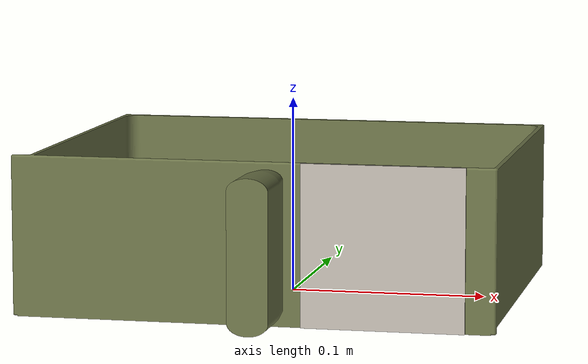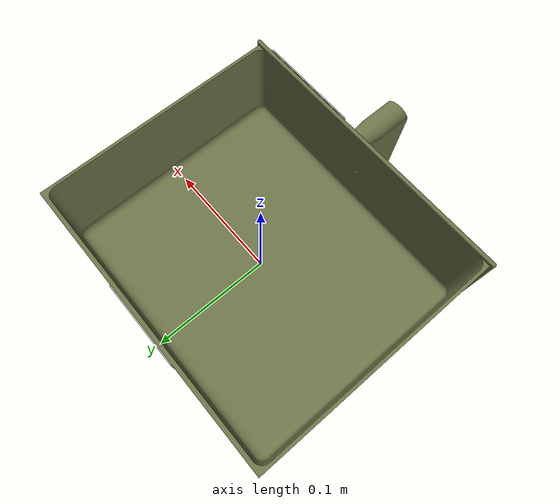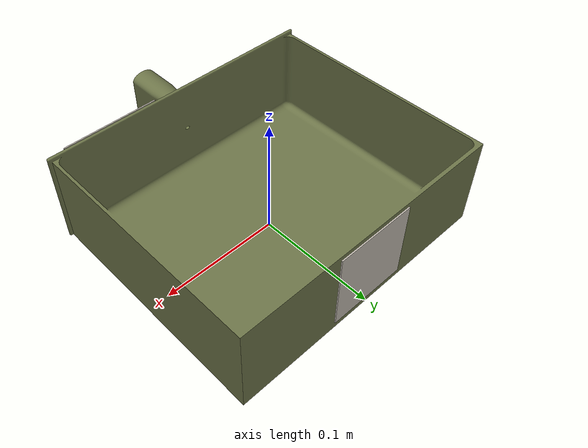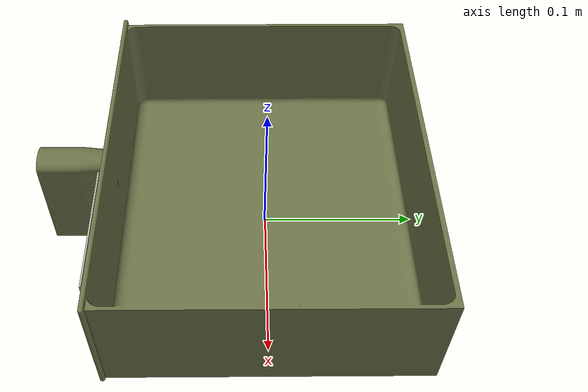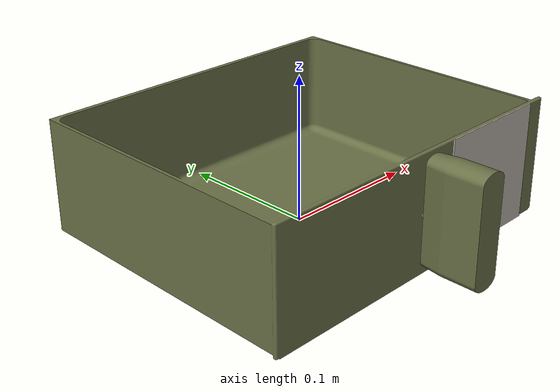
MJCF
<!-- generated by aruco_perception.sim_markers from markers.yml; do not hand-edit -->
<mujoco model="tray">
  <compiler meshdir="." angle="radian" autolimits="true" />
  <default>
    <!-- Meshes are visual only: MuJoCo collides meshes as convex hulls, which would
         fill the tray solid. The box geoms below carry the contacts, the meshes the mass. -->
    <geom density="600" friction="0.5 0.02 0.001" solref="0.005 1" contype="0" conaffinity="0" />
    <default class="collision">
      <geom type="box" mass="0" group="3" rgba="0 1 0.25 0.35" contype="1" conaffinity="1" />
    </default>
  </default>
  <asset>
    <!-- inertia="exact": the tray is hollow, the convex-hull default would make it ~14x too heavy -->
    <mesh name="tray_body" file="tray_body.stl" scale="0.001 0.001 0.001" inertia="exact" />
    <mesh name="tray_handle" file="tray_handle.stl" scale="0.001 0.001 0.001" inertia="exact" />
    <material name="tray" rgba="0.42 0.45 0.28 1" />
    <texture name="aruco_1_tex" type="2d" file="../markers/marker_1.png" />
    <material name="aruco_1_mat" texture="aruco_1_tex" texrepeat="1 1" texuniform="false" specular="0" shininess="0" reflectance="0" emission="0.35" />
    <texture name="aruco_2_tex" type="2d" file="../markers/marker_2.png" />
    <material name="aruco_2_mat" texture="aruco_2_tex" texrepeat="1 1" texuniform="false" specular="0" shininess="0" reflectance="0" emission="0.35" />
  </asset>
  <worldbody>
    <!-- Root origin = tray footprint center on the table surface. Place this asset at z=surface_z. -->
    <body name="root">
      <freejoint name="free" />
      <geom type="mesh" mesh="tray_body" material="tray" pos="-0.120 -0.100 0" />
      <geom type="mesh" mesh="tray_handle" material="tray" pos="-0.12 -0.1 -0.088" euler="1.5708 0 0" />
      <geom name="floor" class="collision" pos="0 0 0.001" size="0.1174 0.100 0.001" />
      <geom name="wall_left" class="collision" pos="-0.11625 0 0.03856" size="0.00115 0.100 0.03856" />
      <geom name="wall_right" class="collision" pos="0.11625 0 0.03856" size="0.00115 0.100 0.03856" />
      <geom name="wall_front" class="collision" pos="0 -0.0984 0.03995" size="0.120 0.0016 0.03995" />
      <geom name="wall_back" class="collision" pos="0 0.0984 0.03856" size="0.1174 0.0016 0.03856" />
      <!-- handle fin: square approximation of the round-ended slab -->
      <geom name="handle" class="collision" pos="0.008 -0.120 0.040" size="0.010 0.0375 0.020" euler="1.5708 0 0" friction="1.2 0.05 0.005" />
      <!-- grasp target: right half of the fin -->
      <site name="grasp" pos="0.0157 -0.1068 0.040" size="0.006" rgba="1 0.2 0.2 0" group="3" />
      <geom name="aruco_1" type="box" size="0.0400000 0.0400000 0.0005" pos="0.0650000 -0.1005000 0.0400000" quat="0.707106781 0.707106781 0.000000000 0.000000000" material="aruco_1_mat" mass="0.001" contype="0" conaffinity="0" />
      <geom name="aruco_2" type="box" size="0.0333333 0.0333333 0.0005" pos="0.0000000 0.1005000 0.0400000" quat="0.000000000 0.000000000 0.707106781 0.707106781" material="aruco_2_mat" mass="0.001" contype="0" conaffinity="0" />
    </body>
  </worldbody>
</mujoco>
